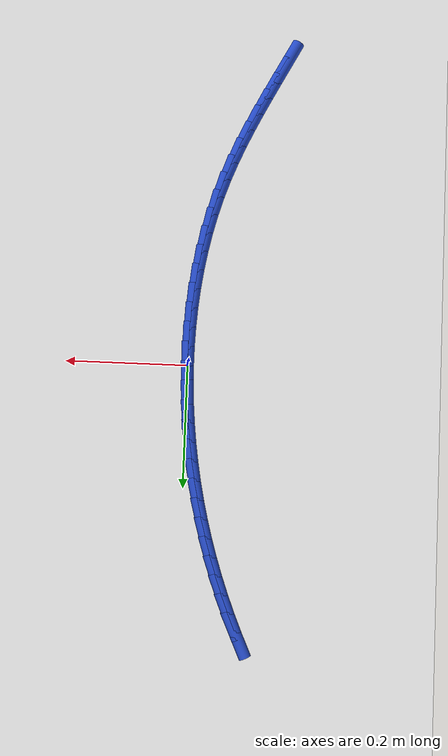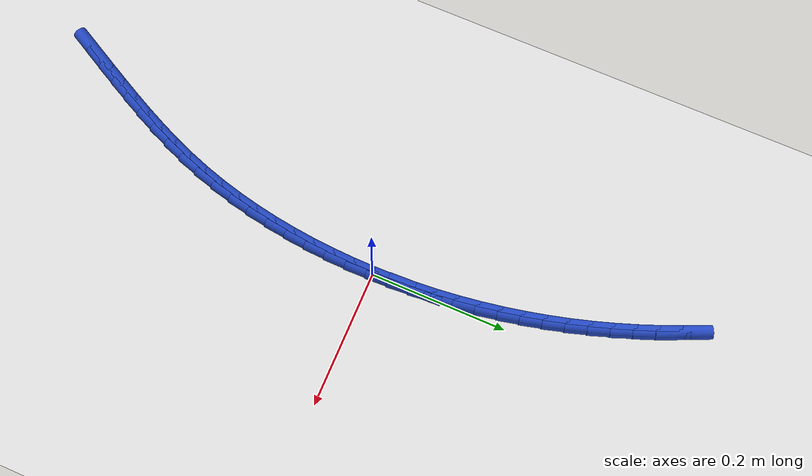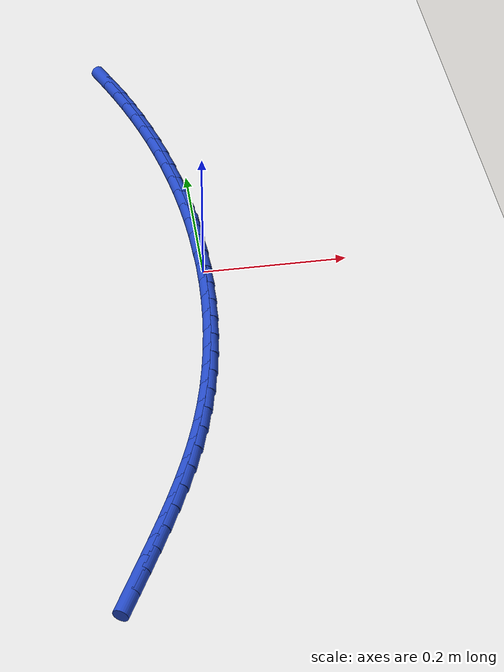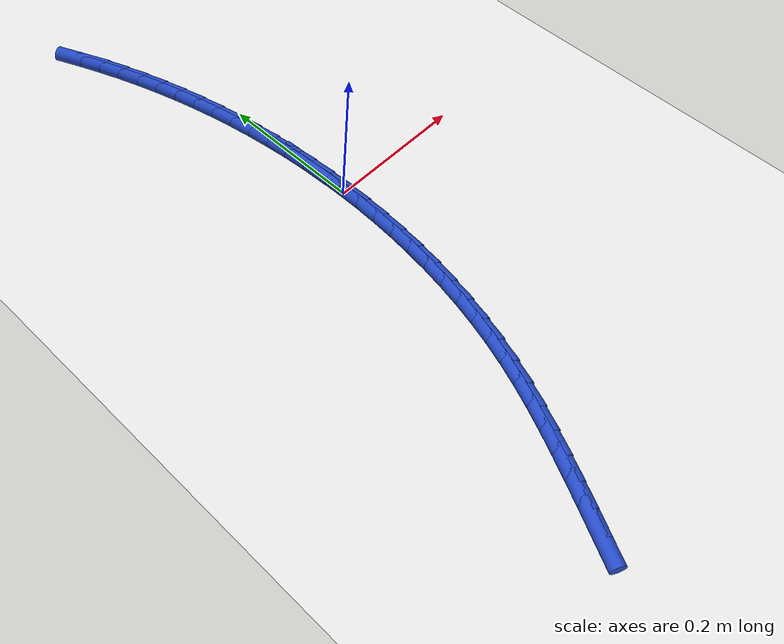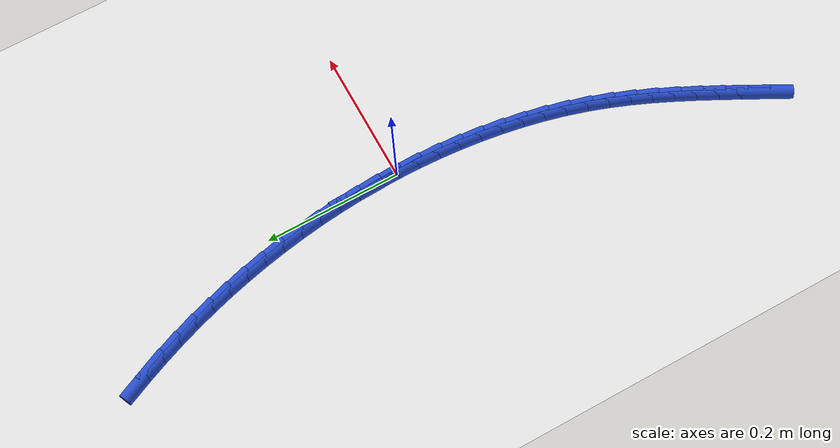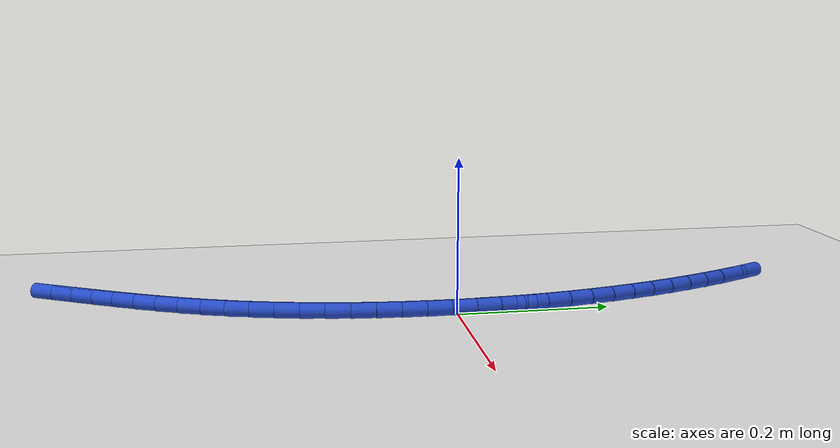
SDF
<sdf version="1.6">
 <world name="default">
  <model name="ground_plane">
   <static>1</static>
   <link name="link">
    <collision name="collision">
     <geometry><plane><normal>0 0 1</normal><size>100 100</size></plane></geometry>
     <surface><friction><ode><mu>100</mu><mu2>50</mu2></ode></friction></surface>
    </collision>
    <visual name="visual">
     <cast_shadows>0</cast_shadows>
     <geometry><plane><normal>0 0 1</normal><size>100 100</size></plane></geometry>
     <material>
      <script><uri>file://media/materials/scripts/gazebo.material</uri><name>Gazebo/WhiteGlow</name></script>
     </material>
    </visual>
   </link>
  </model>
  <model name="line">
   <link name="link_0">
    <pose>-8.673617379884035e-19 -3.469446951953614e-17 0.01 0 1.57 -1.546179138487867</pose>
    <collision name="collision">
     <geometry><cylinder><radius>0.01</radius><length>0.08</length></cylinder></geometry>
    </collision>
    <visual name="visual">
     <material>
      <script><name>Gazebo/Blue</name><uri>file://media/materials/scripts/gazebo.material</uri></script>
     </material>
     <geometry><cylinder><radius>0.01</radius><length>0.08</length></cylinder></geometry>
    </visual>
   </link>
   <link name="link_1">
    <pose>-0.0007845097859090664 0.03186193716310851 0.01 0 1.57 -1.515854096692252</pose>
    <collision name="collision">
     <geometry><cylinder><radius>0.01</radius><length>0.08</length></cylinder></geometry>
    </collision>
    <visual name="visual">
     <material>
      <script><name>Gazebo/Blue</name><uri>file://media/materials/scripts/gazebo.material</uri></script>
     </material>
     <geometry><cylinder><radius>0.01</radius><length>0.08</length></cylinder></geometry>
    </visual>
   </link>
   <link name="link_2">
    <pose>-0.002531820838067714 0.06363262652646287 0.01 0 1.57 -1.485835685073196</pose>
    <collision name="collision">
     <geometry><cylinder><radius>0.01</radius><length>0.08</length></cylinder></geometry>
    </collision>
    <visual name="visual">
     <material>
      <script><name>Gazebo/Blue</name><uri>file://media/materials/scripts/gazebo.material</uri></script>
     </material>
     <geometry><cylinder><radius>0.01</radius><length>0.08</length></cylinder></geometry>
    </visual>
   </link>
   <link name="link_3">
    <pose>-0.005227492054490897 0.09528471830067822 0.01 0 1.57 -1.4560993324907086</pose>
    <collision name="collision">
     <geometry><cylinder><radius>0.01</radius><length>0.08</length></cylinder></geometry>
    </collision>
    <visual name="visual">
     <material>
      <script><name>Gazebo/Blue</name><uri>file://media/materials/scripts/gazebo.material</uri></script>
     </material>
     <geometry><cylinder><radius>0.01</radius><length>0.08</length></cylinder></geometry>
    </visual>
   </link>
   <link name="link_4">
    <pose>-0.00885708233319359 0.12679086269636988 0.01 0 1.57 -1.4266184438754645</pose>
    <collision name="collision">
     <geometry><cylinder><radius>0.01</radius><length>0.08</length></cylinder></geometry>
    </collision>
    <visual name="visual">
     <material>
      <script><name>Gazebo/Blue</name><uri>file://media/materials/scripts/gazebo.material</uri></script>
     </material>
     <geometry><cylinder><radius>0.01</radius><length>0.08</length></cylinder></geometry>
    </visual>
   </link>
   <link name="link_5">
    <pose>-0.013406150572190752 0.15812370992415298 0.01 0 1.57 -1.3973646002075648</pose>
    <collision name="collision">
     <geometry><cylinder><radius>0.01</radius><length>0.08</length></cylinder></geometry>
    </collision>
    <visual name="visual">
     <material>
      <script><name>Gazebo/Blue</name><uri>file://media/materials/scripts/gazebo.material</uri></script>
     </material>
     <geometry><cylinder><radius>0.01</radius><length>0.08</length></cylinder></geometry>
    </visual>
   </link>
   <link name="link_6">
    <pose>-0.01886025566949736 0.18925591019464288 0.01 0 1.57 -1.3683077386218947</pose>
    <collision name="collision">
     <geometry><cylinder><radius>0.01</radius><length>0.08</length></cylinder></geometry>
    </collision>
    <visual name="visual">
     <material>
      <script><name>Gazebo/Blue</name><uri>file://media/materials/scripts/gazebo.material</uri></script>
     </material>
     <geometry><cylinder><radius>0.01</radius><length>0.08</length></cylinder></geometry>
    </visual>
   </link>
   <link name="link_7">
    <pose>-0.025204956523128375 0.2201601137184548 0.01 0 1.57 -1.3394163131144312</pose>
    <collision name="collision">
     <geometry><cylinder><radius>0.01</radius><length>0.08</length></cylinder></geometry>
    </collision>
    <visual name="visual">
     <material>
      <script><name>Gazebo/Blue</name><uri>file://media/materials/scripts/gazebo.material</uri></script>
     </material>
     <geometry><cylinder><radius>0.01</radius><length>0.08</length></cylinder></geometry>
    </visual>
   </link>
   <link name="link_8">
    <pose>-0.03242581203109877 0.2508089707062039 0.01 0 1.57 -1.310657436919345</pose>
    <collision name="collision">
     <geometry><cylinder><radius>0.01</radius><length>0.08</length></cylinder></geometry>
    </collision>
    <visual name="visual">
     <material>
      <script><name>Gazebo/Blue</name><uri>file://media/materials/scripts/gazebo.material</uri></script>
     </material>
     <geometry><cylinder><radius>0.01</radius><length>0.08</length></cylinder></geometry>
    </visual>
   </link>
   <link name="link_9">
    <pose>-0.040508381091423476 0.28117513136850547 0.01 0 1.57 -1.2820068108407752</pose>
    <collision name="collision">
     <geometry><cylinder><radius>0.01</radius><length>0.08</length></cylinder></geometry>
    </collision>
    <visual name="visual">
     <material>
      <script><name>Gazebo/Blue</name><uri>file://media/materials/scripts/gazebo.material</uri></script>
     </material>
     <geometry><cylinder><radius>0.01</radius><length>0.08</length></cylinder></geometry>
    </visual>
   </link>
   <link name="link_10">
    <pose>-0.04943826534335735 0.31123246902436735 0.01 0 1.57 -1.2536332291583911</pose>
    <collision name="collision">
     <geometry><cylinder><radius>0.01</radius><length>0.08</length></cylinder></geometry>
    </collision>
    <visual name="visual">
     <material>
      <script><name>Gazebo/Blue</name><uri>file://media/materials/scripts/gazebo.material</uri></script>
     </material>
     <geometry><cylinder><radius>0.01</radius><length>0.08</length></cylinder></geometry>
    </visual>
   </link>
   <link name="link_11">
    <pose>-0.05920185377134122 0.3409773881245305 0.01 0 1.57 -1.2257566993301436</pose>
    <collision name="collision">
     <geometry><cylinder><radius>0.01</radius><length>0.08</length></cylinder></geometry>
    </collision>
    <visual name="visual">
     <material>
      <script><name>Gazebo/Blue</name><uri>file://media/materials/scripts/gazebo.material</uri></script>
     </material>
     <geometry><cylinder><radius>0.01</radius><length>0.08</length></cylinder></geometry>
    </visual>
   </link>
   <link name="link_12">
    <pose>-0.06978622724726852 0.3704260925769683 0.01 0 1.57 -1.1984580024994478</pose>
    <collision name="collision">
     <geometry><cylinder><radius>0.01</radius><length>0.08</length></cylinder></geometry>
    </collision>
    <visual name="visual">
     <material>
      <script><name>Gazebo/Blue</name><uri>file://media/materials/scripts/gazebo.material</uri></script>
     </material>
     <geometry><cylinder><radius>0.01</radius><length>0.08</length></cylinder></geometry>
    </visual>
   </link>
   <link name="link_13">
    <pose>-0.08117849019270099 0.39959546020077574 0.01 0 1.57 -1.171805971372981</pose>
    <collision name="collision">
     <geometry><cylinder><radius>0.01</radius><length>0.08</length></cylinder></geometry>
    </collision>
    <visual name="visual">
     <material>
      <script><name>Gazebo/Blue</name><uri>file://media/materials/scripts/gazebo.material</uri></script>
     </material>
     <geometry><cylinder><radius>0.01</radius><length>0.08</length></cylinder></geometry>
    </visual>
   </link>
   <link name="link_14">
    <pose>-0.09336574702920032 0.4285023688150477 0.01 0 1.57 -1.1458623187010317</pose>
    <collision name="collision">
     <geometry><cylinder><radius>0.01</radius><length>0.08</length></cylinder></geometry>
    </collision>
    <visual name="visual">
     <material>
      <script><name>Gazebo/Blue</name><uri>file://media/materials/scripts/gazebo.material</uri></script>
     </material>
     <geometry><cylinder><radius>0.01</radius><length>0.08</length></cylinder></geometry>
    </visual>
   </link>
   <link name="link_193">
    <pose>-0.14489269995728213 -0.5088565430834913 0.01 0 1.57 1.0800983280341194</pose>
    <collision name="collision">
     <geometry><cylinder><radius>0.01</radius><length>0.08</length></cylinder></geometry>
    </collision>
    <visual name="visual">
     <material>
      <script><name>Gazebo/Blue</name><uri>file://media/materials/scripts/gazebo.material</uri></script>
     </material>
     <geometry><cylinder><radius>0.01</radius><length>0.08</length></cylinder></geometry>
    </visual>
   </link>
   <link name="link_194">
    <pose>-0.1298239070916696 -0.4806528856483745 0.01 0 1.57 1.085200323809025</pose>
    <collision name="collision">
     <geometry><cylinder><radius>0.01</radius><length>0.08</length></cylinder></geometry>
    </collision>
    <visual name="visual">
     <material>
      <script><name>Gazebo/Blue</name><uri>file://media/materials/scripts/gazebo.material</uri></script>
     </material>
     <geometry><cylinder><radius>0.01</radius><length>0.08</length></cylinder></geometry>
    </visual>
   </link>
   <link name="link_195">
    <pose>-0.11502460822431151 -0.45261033646566823 0.01 0 1.57 1.0961334115664425</pose>
    <collision name="collision">
     <geometry><cylinder><radius>0.01</radius><length>0.08</length></cylinder></geometry>
    </collision>
    <visual name="visual">
     <material>
      <script><name>Gazebo/Blue</name><uri>file://media/materials/scripts/gazebo.material</uri></script>
     </material>
     <geometry><cylinder><radius>0.01</radius><length>0.08</length></cylinder></geometry>
    </visual>
   </link>
   <link name="link_196">
    <pose>-0.1006398586755288 -0.4246160523676512 0.01 0 1.57 1.1129901669417273</pose>
    <collision name="collision">
     <geometry><cylinder><radius>0.01</radius><length>0.08</length></cylinder></geometry>
    </collision>
    <visual name="visual">
     <material>
      <script><name>Gazebo/Blue</name><uri>file://media/materials/scripts/gazebo.material</uri></script>
     </material>
     <geometry><cylinder><radius>0.01</radius><length>0.08</length></cylinder></geometry>
    </visual>
   </link>
   <link name="link_197">
    <pose>-0.08681471376564351 -0.396557190186604 0.01 0 1.57 1.1358120255310111</pose>
    <collision name="collision">
     <geometry><cylinder><radius>0.01</radius><length>0.08</length></cylinder></geometry>
    </collision>
    <visual name="visual">
     <material>
      <script><name>Gazebo/Blue</name><uri>file://media/materials/scripts/gazebo.material</uri></script>
     </material>
     <geometry><cylinder><radius>0.01</radius><length>0.08</length></cylinder></geometry>
    </visual>
   </link>
   <link name="link_198">
    <pose>-0.07369422881497661 -0.36832090675480544 0.01 0 1.57 1.164569460436095</pose>
    <collision name="collision">
     <geometry><cylinder><radius>0.01</radius><length>0.08</length></cylinder></geometry>
    </collision>
    <visual name="visual">
     <material>
      <script><name>Gazebo/Blue</name><uri>file://media/materials/scripts/gazebo.material</uri></script>
     </material>
     <geometry><cylinder><radius>0.01</radius><length>0.08</length></cylinder></geometry>
    </visual>
   </link>
   <link name="link_199">
    <pose>-0.06142345914384947 -0.33979435890453463 0.01 0 1.57 1.1991372851043436</pose>
    <collision name="collision">
     <geometry><cylinder><radius>0.01</radius><length>0.08</length></cylinder></geometry>
    </collision>
    <visual name="visual">
     <material>
      <script><name>Gazebo/Blue</name><uri>file://media/materials/scripts/gazebo.material</uri></script>
     </material>
     <geometry><cylinder><radius>0.01</radius><length>0.08</length></cylinder></geometry>
    </visual>
   </link>
   <link name="link_200">
    <pose>-0.05014746007258339 -0.3108647034680711 0.01 0 1.57 1.2391598679946254</pose>
    <collision name="collision">
     <geometry><cylinder><radius>0.01</radius><length>0.08</length></cylinder></geometry>
    </collision>
    <visual name="visual">
     <material>
      <script><name>Gazebo/Blue</name><uri>file://media/materials/scripts/gazebo.material</uri></script>
     </material>
     <geometry><cylinder><radius>0.01</radius><length>0.08</length></cylinder></geometry>
    </visual>
   </link>
   <link name="link_201">
    <pose>-0.040008686007764076 -0.2814218515947414 0.01 0 1.57 1.2811780046389976</pose>
    <collision name="collision">
     <geometry><cylinder><radius>0.01</radius><length>0.08</length></cylinder></geometry>
    </collision>
    <visual name="visual">
     <material>
      <script><name>Gazebo/Blue</name><uri>file://media/materials/scripts/gazebo.material</uri></script>
     </material>
     <geometry><cylinder><radius>0.01</radius><length>0.08</length></cylinder></geometry>
    </visual>
   </link>
   <link name="link_202">
    <pose>-0.031073176709247075 -0.251436636058176 0.01 0 1.57 1.321589769586891</pose>
    <collision name="collision">
     <geometry><cylinder><radius>0.01</radius><length>0.08</length></cylinder></geometry>
    </collision>
    <visual name="visual">
     <material>
      <script><name>Gazebo/Blue</name><uri>file://media/materials/scripts/gazebo.material</uri></script>
     </material>
     <geometry><cylinder><radius>0.01</radius><length>0.08</length></cylinder></geometry>
    </visual>
   </link>
   <link name="link_203">
    <pose>-0.023320014579844943 -0.22097197578143324 0.01 0 1.57 1.3603184453107984</pose>
    <collision name="collision">
     <geometry><cylinder><radius>0.01</radius><length>0.08</length></cylinder></geometry>
    </collision>
    <visual name="visual">
     <material>
      <script><name>Gazebo/Blue</name><uri>file://media/materials/scripts/gazebo.material</uri></script>
     </material>
     <geometry><cylinder><radius>0.01</radius><length>0.08</length></cylinder></geometry>
    </visual>
   </link>
   <link name="link_204">
    <pose>-0.016723561519447486 -0.1900957886083311 0.01 0 1.57 1.3974910588438259</pose>
    <collision name="collision">
     <geometry><cylinder><radius>0.01</radius><length>0.08</length></cylinder></geometry>
    </collision>
    <visual name="visual">
     <material>
      <script><name>Gazebo/Blue</name><uri>file://media/materials/scripts/gazebo.material</uri></script>
     </material>
     <geometry><cylinder><radius>0.01</radius><length>0.08</length></cylinder></geometry>
    </visual>
   </link>
   <link name="link_205">
    <pose>-0.011258179427944662 -0.15887599238268782 0.01 0 1.57 1.4332396353991836</pose>
    <collision name="collision">
     <geometry><cylinder><radius>0.01</radius><length>0.08</length></cylinder></geometry>
    </collision>
    <visual name="visual">
     <material>
      <script><name>Gazebo/Blue</name><uri>file://media/materials/scripts/gazebo.material</uri></script>
     </material>
     <geometry><cylinder><radius>0.01</radius><length>0.08</length></cylinder></geometry>
    </visual>
   </link>
   <link name="link_206">
    <pose>-0.006898230205226487 -0.1273805049483219 0.01 0 1.57 1.4676989022848181</pose>
    <collision name="collision">
     <geometry><cylinder><radius>0.01</radius><length>0.08</length></cylinder></geometry>
    </collision>
    <visual name="visual">
     <material>
      <script><name>Gazebo/Blue</name><uri>file://media/materials/scripts/gazebo.material</uri></script>
     </material>
     <geometry><cylinder><radius>0.01</radius><length>0.08</length></cylinder></geometry>
    </visual>
   </link>
   <link name="link_207">
    <pose>-0.0036180757511829415 -0.09567724414905178 0.01 0 1.57 1.5010047144524923</pose>
    <collision name="collision">
     <geometry><cylinder><radius>0.01</radius><length>0.08</length></cylinder></geometry>
    </collision>
    <visual name="visual">
     <material>
      <script><name>Gazebo/Blue</name><uri>file://media/materials/scripts/gazebo.material</uri></script>
     </material>
     <geometry><cylinder><radius>0.01</radius><length>0.08</length></cylinder></geometry>
    </visual>
   </link>
   <link name="link_208">
    <pose>-0.0013920779657040166 -0.06383412782869584 0.01 0 1.57 1.5332930924512862</pose>
    <collision name="collision">
     <geometry><cylinder><radius>0.01</radius><length>0.08</length></cylinder></geometry>
    </collision>
    <visual name="visual">
     <material>
      <script><name>Gazebo/Blue</name><uri>file://media/materials/scripts/gazebo.material</uri></script>
     </material>
     <geometry><cylinder><radius>0.01</radius><length>0.08</length></cylinder></geometry>
    </visual>
   </link>
   <link name="link_209">
    <pose>-0.00019459874867969228 -0.03191907383107176 0.01 0 1.57 1.5646997734062484</pose>
    <collision name="collision">
     <geometry><cylinder><radius>0.01</radius><length>0.08</length></cylinder></geometry>
    </collision>
    <visual name="visual">
     <material>
      <script><name>Gazebo/Blue</name><uri>file://media/materials/scripts/gazebo.material</uri></script>
     </material>
     <geometry><cylinder><radius>0.01</radius><length>0.08</length></cylinder></geometry>
    </visual>
   </link>
   <link name="link_210">
    <pose>-7.806255641895632e-18 -2.220446049250313e-16 0.01 0 1.57 -1.5462324629432103</pose>
    <collision name="collision">
     <geometry><cylinder><radius>0.01</radius><length>0.08</length></cylinder></geometry>
    </collision>
    <visual name="visual">
     <material>
      <script><name>Gazebo/Blue</name><uri>file://media/materials/scripts/gazebo.material</uri></script>
     </material>
     <geometry><cylinder><radius>0.01</radius><length>0.08</length></cylinder></geometry>
    </visual>
   </link>
   <link name="link_211">
    <pose>-0.0007826436195549043 0.0318551758207026 0.01 0 1.57 -1.5161828388729879</pose>
    <collision name="collision">
     <geometry><cylinder><radius>0.01</radius><length>0.08</length></cylinder></geometry>
    </collision>
    <visual name="visual">
     <material>
      <script><name>Gazebo/Blue</name><uri>file://media/materials/scripts/gazebo.material</uri></script>
     </material>
     <geometry><cylinder><radius>0.01</radius><length>0.08</length></cylinder></geometry>
    </visual>
   </link>
   <link name="link_212">
    <pose>-0.0025168915072344943 0.063578535787219 0.01 0 1.57 -1.5312298609000219</pose>
    <collision name="collision">
     <geometry><cylinder><radius>0.01</radius><length>0.08</length></cylinder></geometry>
    </collision>
    <visual name="visual">
     <material>
      <script><name>Gazebo/Blue</name><uri>file://media/materials/scripts/gazebo.material</uri></script>
     </material>
     <geometry><cylinder><radius>0.01</radius><length>0.08</length></cylinder></geometry>
    </visual>
   </link>
  </model>
 </world>
</sdf>
